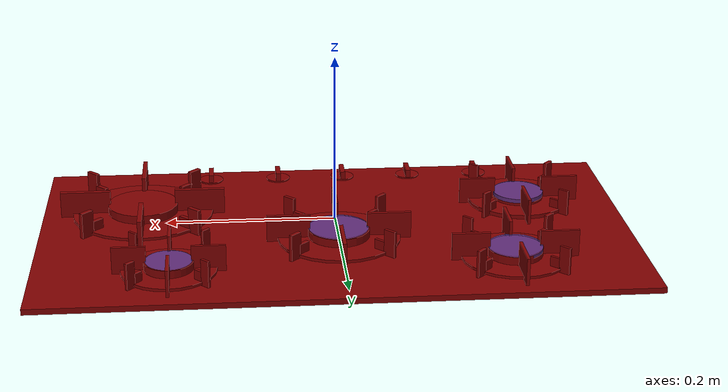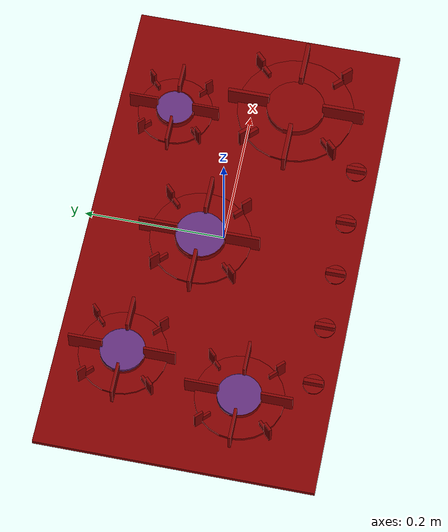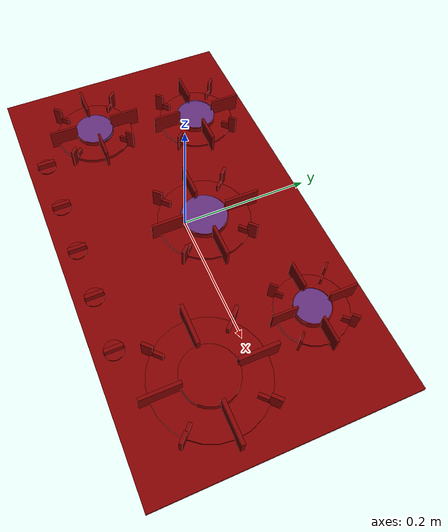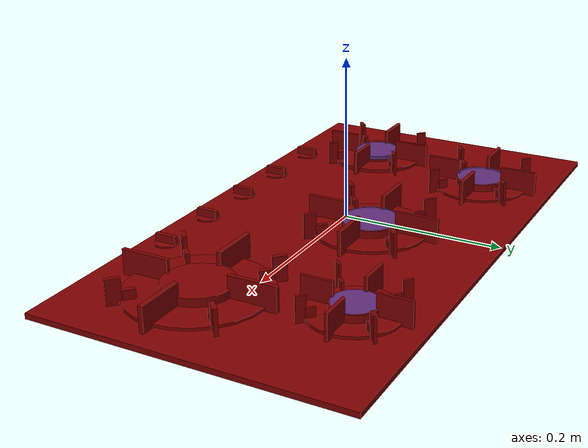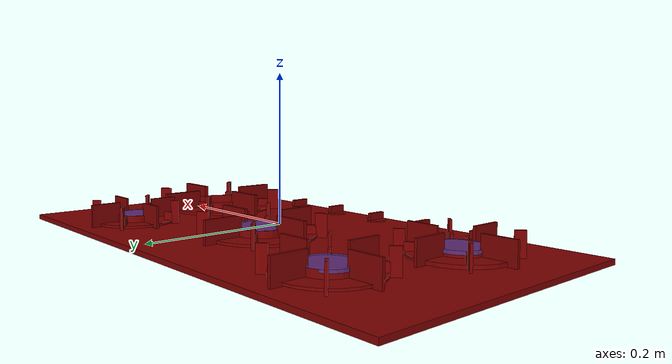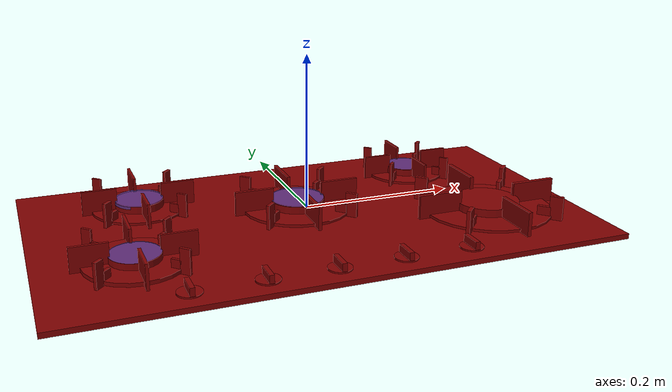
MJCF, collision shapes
<?xml version='1.0' encoding='UTF-8'?>
<mujoco model="model">
  <compiler angle="radian"/>
  <asset>
    <mesh file="visuals/knob_center.obj" name="knob_center_vis"/>
    <mesh file="visuals/knob_front_left.obj" name="knob_front_left_vis"/>
    <mesh file="visuals/knob_front_right.obj" name="knob_front_right_vis"/>
    <mesh file="visuals/knob_rear_left.obj" name="knob_rear_left_vis"/>
    <mesh file="visuals/knob_rear_right.obj" name="knob_rear_right_vis"/>
    <mesh file="visuals/Body001.obj" name="Body001_vis"/>
    <mesh file="visuals/Body002.obj" name="Body002_vis"/>
    <texture file="visuals/T_BC001.png" name="Body001_material" type="2d"/>
    <material name="Body001_material" rgba="1 1 1 1.0" texture="Body001_material" shininess="0.2512328028678894" specular="8"/>
    <texture file="visuals/T_BC001.png" name="knob_center_material" type="2d"/>
    <material name="knob_center_material" rgba="1 1 1 1.0" texture="knob_center_material" shininess="0.2512328028678894" specular="2"/>
    <texture file="visuals/T_BC001.png" name="knob_front_left_material" type="2d"/>
    <material name="knob_front_left_material" rgba="1 1 1 1.0" texture="knob_front_left_material" shininess="0.2512328028678894" specular="2"/>
    <texture file="visuals/T_BC001.png" name="knob_front_right_material" type="2d"/>
    <material name="knob_front_right_material" rgba="1 1 1 1.0" texture="knob_front_right_material" shininess="0.2512328028678894" specular="2"/>
    <texture file="visuals/T_BC001.png" name="knob_rear_left_material" type="2d"/>
    <material name="knob_rear_left_material" rgba="1 1 1 1.0" texture="knob_rear_left_material" shininess="0.2512328028678894" specular="2"/>
    <texture file="visuals/T_BC001.png" name="knob_rear_right_material" type="2d"/>
    <material name="knob_rear_right_material" rgba="1 1 1 1.0" texture="knob_rear_right_material" shininess="0.2512328028678894" specular="2"/>
    <texture file="visuals/T_BC001.png" name="Body002_material" type="2d"/>
    <material name="Body002_material" rgba="1 1 1 1.0" texture="Body002_material" shininess="0.2512328028678894" specular="3"/>
  </asset>
  <default>
    <default class="visual">
      <geom conaffinity="0" contype="0" group="1" type="mesh"/>
    </default>
    <default class="collision">
      <geom group="0" rgba="0.5 0 0 0.5"/>
    </default>
    <default class="spawn">
      <geom group="0" rgba="1 1 1 0.5" contype="0" conaffinity="0"/>
      <site group="0" rgba="1 1 1 0.5"/>
    </default>
    <default class="region">
      <geom group="1" conaffinity="0" contype="0" rgba="0 1 0 0"/>
    </default>
  </default>
  <worldbody>
    <body>
      <body name="object">
        <site type="cylinder" rgba="0.3 0.4 1 0.5" size="0.031039979308843613 0.0026827813126146793" pos="-0.23412662744522095 -0.06868687272071838 -0.000788892968557775" name="burner_on_front_left"/>
        <site type="cylinder" rgba="0.3 0.4 1 0.5" size="0.041901927441358566 0.0032345084473490715" pos="0.23053333163261414 -0.06037803366780281 -0.0012766928412020206" name="burner_on_front_right"/>
        <site type="cylinder" rgba="0.3 0.4 1 0.5" size="0.03170698881149292 0.0026528744492679834" pos="-0.19920353591442108 0.10191013664007187 0.000673864153213799" name="burner_on_rear_left"/>
        <site type="cylinder" rgba="0.3 0.4 1 0.5" size="0.02689894661307335 0.002362231258302927" pos="0.1954825073480606 0.11091150343418121 -3.217346966266632e-05" name="burner_on_rear_right"/>
        <site type="cylinder" rgba="0.3 0.4 1 0.5" size="0.03561927750706673 0.0027672413270920515" pos="-0.0018503711326047778 0.03284667059779167 0.0006277498323470354" name="burner_center"/>
        <geom mesh="Body001_vis" type="mesh" solimp="0.998 0.998 0.001" solref="0.001 1" density="100" friction="0.95 0.3 0.1" class="visual" material="Body001_material"/>
        <geom class="collision" type="box" pos="-1.9870640244334936e-08 -3.975583240389824e-08 -0.01567908190190792" size="0.35133975744247437 0.19492700695991516 0.0033905429299920797" quat="1.0 0.0 0.0 0.0"/>
        <body name="knob_center">
          <joint axis="0.0 0.0 1.0" pos="-0.021718578413128853 -0.1645481139421463 -0.005766221322119236" limited="true" name="knob_center_joint" range="0.0 3.6651914291880923" type="hinge" damping="0.05" armature="0.001"/>
          <geom mesh="knob_center_vis" type="mesh" solimp="0.998 0.998 0.001" solref="0.001 1" density="100" friction="0.95 0.3 0.1" class="visual" material="knob_center_material"/>
          <geom class="collision" type="cylinder" pos="-0.02172020636498928 -0.16453014314174652 -0.010111648589372635" size="0.014798812568187714 0.0009359997930005193" quat="1.0 0.0 0.0 0.0"/>
          <geom class="collision" type="box" pos="-0.02166769653558731 -0.1644439697265625 -0.004227417055517435" size="0.0029218827839940786 0.013743828050792217 0.005035351496189833" quat="1.0 0.0 0.0 0.0"/>
        </body>
        <body name="knob_front_left">
          <joint axis="0.0 0.0 1.0" pos="-0.1938755214214325 -0.16454796493053436 -0.005766180343925953" limited="true" name="knob_front_left_joint" range="0.0 3.6651914291880923" type="hinge" damping="0.05" armature="0.001"/>
          <geom mesh="knob_front_left_vis" type="mesh" solimp="0.998 0.998 0.001" solref="0.001 1" density="100" friction="0.95 0.3 0.1" class="visual" material="knob_front_left_material"/>
          <geom class="collision" type="cylinder" pos="-0.19387772679328918 -0.16453014314174652 -0.010111648589372635" size="0.014798812568187714 0.0009359997930005193" quat="1.0 0.0 0.0 0.0"/>
          <geom class="collision" type="box" pos="-0.19382520020008087 -0.1644439697265625 -0.004227417055517435" size="0.0029218827839940786 0.013743828050792217 0.005035351496189833" quat="1.0 0.0 0.0 0.0"/>
        </body>
        <body name="knob_front_right">
          <joint axis="0.0 0.0 1.0" pos="0.14702817797660828 -0.1645480841398239 -0.005765841342508793" limited="true" name="knob_front_right_joint" range="0.0 3.6651914291880923" type="hinge" damping="0.05" armature="0.001"/>
          <geom mesh="knob_front_right_vis" type="mesh" solimp="0.998 0.998 0.001" solref="0.001 1" density="100" friction="0.95 0.3 0.1" class="visual" material="knob_front_right_material"/>
          <geom class="collision" type="cylinder" pos="0.1470891535282135 -0.16453014314174652 -0.010111648589372635" size="0.014798812568187714 0.0009359997930005193" quat="1.0 0.0 0.0 0.0"/>
          <geom class="collision" type="box" pos="0.14714165031909943 -0.1644439697265625 -0.004227417055517435" size="0.0029218827839940786 0.013743828050792217 0.005035351496189833" quat="1.0 0.0 0.0 0.0"/>
        </body>
        <body name="knob_rear_left">
          <joint axis="0.0 0.0 1.0" pos="-0.1065337061882019 -0.16454778611660004 -0.005766345653682947" limited="true" name="knob_rear_left_joint" range="0.0 3.6651914291880923" type="hinge" damping="0.05" armature="0.001"/>
          <geom mesh="knob_rear_left_vis" type="mesh" solimp="0.998 0.998 0.001" solref="0.001 1" density="100" friction="0.95 0.3 0.1" class="visual" material="knob_rear_left_material"/>
          <geom class="collision" type="cylinder" pos="-0.10649147629737854 -0.16453014314174652 -0.010111648589372635" size="0.014798812568187714 0.0009359997930005193" quat="1.0 0.0 0.0 0.0"/>
          <geom class="collision" type="box" pos="-0.10643895715475082 -0.1644439697265625 -0.004227417055517435" size="0.0029218827839940786 0.013743828050792217 0.005035351496189833" quat="1.0 0.0 0.0 0.0"/>
        </body>
        <body name="knob_rear_right">
          <joint axis="0.0 0.0 1.0" pos="0.06127255782485008 -0.1645480990409851 -0.00576598197221756" limited="true" name="knob_rear_right_joint" range="0.0 3.6651914291880923" type="hinge" damping="0.05" armature="0.001"/>
          <geom mesh="knob_rear_right_vis" type="mesh" solimp="0.998 0.998 0.001" solref="0.001 1" density="100" friction="0.95 0.3 0.1" class="visual" material="knob_rear_right_material"/>
          <geom class="collision" type="cylinder" pos="0.061280038207769394 -0.16453014314174652 -0.010111648589372635" size="0.014798812568187714 0.0009359997930005193" quat="1.0 0.0 0.0 0.0"/>
          <geom class="collision" type="box" pos="0.061332546174526215 -0.1644439697265625 -0.004227417055517435" size="0.0029218827839940786 0.013743828050792217 0.005035351496189833" quat="1.0 0.0 0.0 0.0"/>
        </body>
        <body name="Body002">
          <geom mesh="Body002_vis" type="mesh" solimp="0.998 0.998 0.001" solref="0.001 1" density="100" friction="0.95 0.3 0.1" class="visual" material="Body002_material"/>
          <geom class="collision" type="cylinder" pos="0.2305164486169815 -0.06025883927941322 -0.009416977874934673" size="0.08525104075670242 0.00171655451413244" quat="1.0 0.0 0.0 0.0"/>
          <geom class="collision" type="cylinder" pos="0.19574254751205444 0.11078675836324692 -0.009487813338637352" size="0.05463491007685661 0.0017021840903908014" quat="1.0 0.0 0.0 0.0"/>
          <geom class="collision" type="cylinder" pos="-0.0021225272212177515 0.03306420147418976 -0.009609478525817394" size="0.07247783243656158 0.0017875622725114226" quat="1.0 0.0 0.0 0.0"/>
          <geom class="collision" type="cylinder" pos="-0.23411770164966583 -0.06894589215517044 -0.009139971807599068" size="0.062298860400915146 0.002385626547038555" quat="1.0 0.0 0.0 0.0"/>
          <geom class="collision" type="cylinder" pos="-0.1989661306142807 0.10190616548061371 -0.009529529139399529" size="0.06234082579612732 0.0015527750365436077" quat="1.0 0.0 0.0 0.0"/>
          <geom class="collision" type="box" pos="0.2304467111825943 -0.129726380109787 0.003392541315406561" size="0.002413199283182621 0.03010781668126583 0.015671569854021072" quat="1.0 0.0 0.0 0.0"/>
          <geom class="collision" type="box" pos="0.16819560527801514 -0.12323655188083649 0.003392541315406561" size="0.002460036426782608 0.00841588992625475 0.015671569854021072" quat="0.9234591722488403 0.0 0.0 -0.3836967349052429"/>
          <geom class="collision" type="box" pos="0.17888259887695312 -0.11259636282920837 -0.004079860635101795" size="0.002460036426782608 0.00841588992625475 0.008199169300496578" quat="0.9234591722488403 0.0 0.0 -0.3836967349052429"/>
          <geom class="collision" type="box" pos="0.16138878464698792 -0.060065172612667084 0.003392541315406561" size="0.03012009710073471 0.00271985842846334 0.015671569854021072" quat="1.0 0.0 0.0 0.0"/>
          <geom class="collision" type="box" pos="0.16725710034370422 0.0037271983455866575 0.003392541315406561" size="0.002592348027974367 0.00841588992625475 0.015671569854021072" quat="0.37939590215682983 0.0 0.0 -0.9252344369888306"/>
          <geom class="collision" type="box" pos="0.17784461379051208 -0.007011984940618277 -0.004079860635101795" size="0.002592348027974367 0.00841588992625475 0.008199169300496578" quat="0.37939590215682983 0.0 0.0 -0.9252344369888306"/>
          <geom class="collision" type="box" pos="0.2307799756526947 0.00919190514832735 0.003392541315406561" size="0.002619556849822402 0.030119605362415314 0.015671569854021072" quat="1.0 0.0 0.0 0.0"/>
          <geom class="collision" type="box" pos="0.2943020164966583 0.003259133081883192 0.003392541315406561" size="0.0025812520179897547 0.00841588992625475 0.015671569854021072" quat="0.3859662115573883 0.0 0.0 0.9225128889083862"/>
          <geom class="collision" type="box" pos="0.28363361954689026 -0.00740018067881465 -0.004079860635101795" size="0.0024804326239973307 0.00841588992625475 0.008199169300496578" quat="0.3859662115573883 0.0 0.0 0.9225128889083862"/>
          <geom class="collision" type="box" pos="0.29970353841781616 -0.0603160634636879 0.003392541315406561" size="0.03012058697640896 0.0028193634934723377 0.015671569854021072" quat="1.0 0.0 0.0 0.0"/>
          <geom class="collision" type="box" pos="0.29407891631126404 -0.12393683195114136 0.003392541315406561" size="0.0024447692558169365 0.008415890857577324 0.015671569854021072" quat="0.9252344965934753 0.0 0.0 0.3793957233428955"/>
          <geom class="collision" type="box" pos="0.28337109088897705 -0.11331626772880554 -0.004079860635101795" size="0.0026137246750295162 0.008415890857577324 0.008199169300496578" quat="0.9252344965934753 0.0 0.0 0.3793957233428955"/>
          <geom class="collision" type="box" pos="-0.0017104988219216466 -0.02650550752878189 0.0033930528443306684" size="0.0021257661283016205 0.02569197490811348 0.015852341428399086" quat="1.0 0.0 0.0 0.0"/>
          <geom class="collision" type="box" pos="-0.0566076785326004 -0.021989038214087486 0.0035659156274050474" size="0.002023607725277543 0.007693273946642876 0.016024960204958916" quat="0.9234591722488403 0.0 0.0 -0.3836967349052429"/>
          <geom class="collision" type="box" pos="-0.04683831334114075 -0.012262452393770218 -0.004259876906871796" size="0.002023607725277543 0.007693273946642876 0.008199169300496578" quat="0.9234591722488403 0.0 0.0 -0.3836967349052429"/>
          <geom class="collision" type="box" pos="-0.061109475791454315 0.03268968686461449 0.0035659156274050474" size="0.025963541120290756 0.0022304956801235676 0.01602519303560257" quat="1.0 0.0 0.0 0.0"/>
          <geom class="collision" type="box" pos="-0.05655159056186676 0.08762218058109283 0.0035659156274050474" size="0.00187376094982028 0.007693275343626738 0.016024960204958916" quat="0.37939590215682983 0.0 0.0 -0.9252344369888306"/>
          <geom class="collision" type="box" pos="-0.04687315225601196 0.07780509442090988 -0.004259876906871796" size="0.00187376094982028 0.007693275343626738 0.008199169300496578" quat="0.37939590215682983 0.0 0.0 -0.9252344369888306"/>
          <geom class="collision" type="box" pos="-0.0019446121295914054 0.09368745982646942 0.0034850158262997866" size="0.0021011100616306067 0.027532000094652176 0.015944281592965126" quat="1.0 0.0 0.0 0.0"/>
          <geom class="collision" type="box" pos="0.052505139261484146 0.08773154765367508 0.0035961701069027185" size="0.0021028558257967234 0.00769327487796545 0.016055215150117874" quat="0.3859662115573883 0.0 0.0 0.9225128889083862"/>
          <geom class="collision" type="box" pos="0.04276837781071663 0.07797163724899292 -0.004259876906871796" size="0.0022172550670802593 0.00769327487796545 0.008199169300496578" quat="0.3859662115573883 0.0 0.0 0.9225128889083862"/>
          <geom class="collision" type="box" pos="0.057457972317934036 0.03283430635929108 0.0035214973613619804" size="0.02549244463443756 0.0021603982895612717 0.015980752184987068" quat="1.0 0.0 0.0 0.0"/>
          <geom class="collision" type="box" pos="0.05311340093612671 -0.02201366052031517 0.003671024926006794" size="0.0021337748039513826 0.007693275343626738 0.016130071133375168" quat="0.9252344965934753 0.0 0.0 0.3793957233428955"/>
          <geom class="collision" type="box" pos="0.04324999079108238 -0.012378941290080547 -0.004259876906871796" size="0.0023935257922858 0.007693275343626738 0.008199169300496578" quat="0.9252344965934753 0.0 0.0 0.3793957233428955"/>
          <geom class="collision" type="box" pos="-0.23380047082901 -0.12058396637439728 0.0033260895870625973" size="0.0018819505348801613 0.022281741723418236 0.015785332769155502" quat="1.0 0.0 0.0 0.0"/>
          <geom class="collision" type="box" pos="-0.2812921404838562 -0.11682476848363876 0.003500396851450205" size="0.001977629028260708 0.006672104354947805 0.015959443524479866" quat="0.9234591722488403 0.0 0.0 -0.3836967349052429"/>
          <geom class="collision" type="box" pos="-0.27281951904296875 -0.1083892434835434 -0.004259876906871796" size="0.001977629028260708 0.006672104354947805 0.008199169300496578" quat="0.9234591722488403 0.0 0.0 -0.3836967349052429"/>
          <geom class="collision" type="box" pos="-0.2853533625602722 -0.06921780854463577 0.0033260895870625973" size="0.022517113015055656 0.0019061720231547952 0.015785321593284607" quat="1.0 0.0 0.0 0.0"/>
          <geom class="collision" type="box" pos="-0.28140056133270264 -0.021605050191283226 0.0033260895870625973" size="0.0016250464832410216 0.006672104820609093 0.015785135328769684" quat="0.37939590215682983 0.0 0.0 -0.9252344369888306"/>
          <geom class="collision" type="box" pos="-0.2730068266391754 -0.030119068920612335 -0.004259876906871796" size="0.0016250464832410216 0.006672104820609093 0.008199169300496578" quat="0.37939590215682983 0.0 0.0 -0.9252344369888306"/>
          <geom class="collision" type="box" pos="-0.2339620739221573 -0.016345247626304626 0.0033260895870625973" size="0.0017424094257876277 0.023877138271927834 0.015785308554768562" quat="1.0 0.0 0.0 0.0"/>
          <geom class="collision" type="box" pos="-0.18668004870414734 -0.021651700139045715 0.0033260895870625973" size="0.0016250464832410216 0.006672104820609093 0.015785135328769684" quat="0.3859662115573883 0.0 0.0 0.9225128889083862"/>
          <geom class="collision" type="box" pos="-0.1951940357685089 -0.030045462772250175 -0.004259876906871796" size="0.0016250464832410216 0.006672104820609093 0.008199169300496578" quat="0.3859662115573883 0.0 0.0 0.9225128889083862"/>
          <geom class="collision" type="box" pos="-0.18252341449260712 -0.06898942589759827 0.0033260895870625973" size="0.02210799977183342 0.0017424076795578003 0.015785297378897667" quat="1.0 0.0 0.0 0.0"/>
          <geom class="collision" type="box" pos="-0.18631841242313385 -0.11671436578035355 0.0033260895870625973" size="0.001813482609577477 0.006672104820609093 0.015785135328769684" quat="0.9252344965934753 0.0 0.0 0.3793957829475403"/>
          <geom class="collision" type="box" pos="-0.19471217691898346 -0.10820035636425018 -0.004259876906871796" size="0.001813482609577477 0.006672104820609093 0.008199169300496578" quat="0.9252344965934753 0.0 0.0 0.3793957829475403"/>
          <geom class="collision" type="box" pos="-0.19910724461078644 0.049973201006650925 0.003698511514812708" size="0.0018003513105213642 0.022281741723418236 0.016157707199454308" quat="1.0 0.0 0.0 0.0"/>
          <geom class="collision" type="box" pos="-0.24685537815093994 0.0542072094976902 0.003698511514812708" size="0.001942478003911674 0.006672104354947805 0.01615755632519722" quat="0.9234591722488403 0.0 0.0 -0.3836967349052429"/>
          <geom class="collision" type="box" pos="-0.2383827567100525 0.06264273077249527 -0.004259876906871796" size="0.001942478003911674 0.006672104354947805 0.008199169300496578" quat="0.9234591722488403 0.0 0.0 -0.3836967349052429"/>
          <geom class="collision" type="box" pos="-0.2504430115222931 0.10150311887264252 0.003698511514812708" size="0.02251625992357731 0.001742408494465053 0.016157696023583412" quat="1.0 0.0 0.0 0.0"/>
          <geom class="collision" type="box" pos="-0.24649107456207275 0.14895211160182953 0.003698511514812708" size="0.0016250464832410216 0.006672104820609093 0.01615755632519722" quat="0.37939590215682983 0.0 0.0 -0.9252344369888306"/>
          <geom class="collision" type="box" pos="-0.23809732496738434 0.14043809473514557 -0.004259876906871796" size="0.0016250464832410216 0.006672104820609093 0.008199169300496578" quat="0.37939590215682983 0.0 0.0 -0.9252344369888306"/>
          <geom class="collision" type="box" pos="-0.19916130602359772 0.15421244502067566 0.003698511514812708" size="0.0018511433154344559 0.023877672851085663 0.016157684847712517" quat="1.0 0.0 0.0 0.0"/>
          <geom class="collision" type="box" pos="-0.15190273523330688 0.14903952181339264 0.003698511514812708" size="0.0018133152043446898 0.006672104820609093 0.01615755632519722" quat="0.3859662115573883 0.0 0.0 0.9225128889083862"/>
          <geom class="collision" type="box" pos="-0.16041672229766846 0.14064575731754303 -0.004259876906871796" size="0.0018133152043446898 0.006672104820609093 0.008199169300496578" quat="0.3859662115573883 0.0 0.0 0.9225128889083862"/>
          <geom class="collision" type="box" pos="-0.14761213958263397 0.1019052267074585 0.003698511514812708" size="0.02210979163646698 0.0020798929035663605 0.01615767367184162" quat="1.0 0.0 0.0 0.0"/>
          <geom class="collision" type="box" pos="-0.15154309570789337 0.05371050536632538 0.0033757498022168875" size="0.0016250464832410216 0.006672104820609093 0.01583479531109333" quat="0.9252344965934753 0.0 0.0 0.3793957829475403"/>
          <geom class="collision" type="box" pos="-0.15993686020374298 0.06222451478242874 -0.004259876906871796" size="0.0016250464832410216 0.006672104820609093 0.008199169300496578" quat="0.9252344965934753 0.0 0.0 0.3793957829475403"/>
          <geom class="collision" type="box" pos="0.19556857645511627 0.06600487977266312 0.0035905770491808653" size="0.0015870715724304318 0.019392069429159164 0.016049621626734734" quat="1.0 0.0 0.0 0.0"/>
          <geom class="collision" type="box" pos="0.15415145456790924 0.06941237300634384 0.0039413138292729855" size="0.0015295316698029637 0.005806835368275642 0.016400359570980072" quat="0.9234591126441956 0.0 0.0 -0.38369685411453247"/>
          <geom class="collision" type="box" pos="0.16152530908584595 0.07675393670797348 -0.004259876906871796" size="0.0015295316698029637 0.005806835368275642 0.008199169300496578" quat="0.9234591126441956 0.0 0.0 -0.38369685411453247"/>
          <geom class="collision" type="box" pos="0.15082775056362152 0.1106591448187828 0.0032125250436365604" size="0.019657205790281296 0.0017094668000936508 0.015671569854021072" quat="1.0 0.0 0.0 0.0"/>
          <geom class="collision" type="box" pos="0.15431331098079681 0.15226705372333527 0.0033851093612611294" size="0.0015842283610254526 0.005806834902614355 0.015844155102968216" quat="0.37939590215682983 0.0 0.0 -0.9252344369888306"/>
          <geom class="collision" type="box" pos="0.16161853075027466 0.14485715329647064 -0.004259876906871796" size="0.0015842283610254526 0.005806834902614355 0.008199169300496578" quat="0.37939590215682983 0.0 0.0 -0.9252344369888306"/>
          <geom class="collision" type="box" pos="0.19574777781963348 0.15672411024570465 0.0034229527227580547" size="0.001785465283319354 0.02078196406364441 0.01588199846446514" quat="1.0 0.0 0.0 0.0"/>
          <geom class="collision" type="box" pos="0.2369399517774582 0.1517917662858963 0.0033968982752412558" size="0.0018571855034679174 0.00580683583393693 0.0158559437841177" quat="0.3859662115573883 0.0 0.0 0.9225128889083862"/>
          <geom class="collision" type="box" pos="0.22953009605407715 0.14448653161525726 -0.004259876906871796" size="0.0018571855034679174 0.00580683583393693 0.008199169300496578" quat="0.3859662115573883 0.0 0.0 0.9225128889083862"/>
          <geom class="collision" type="box" pos="0.24024547636508942 0.11069395393133163 0.0035695843398571014" size="0.019242070615291595 0.0017308916430920362 0.0160286296159029" quat="1.0 0.0 0.0 0.0"/>
          <geom class="collision" type="box" pos="0.23687125742435455 0.06930118054151535 0.0033770843874663115" size="0.0014764938969165087 0.005806834902614355 0.01583612896502018" quat="0.9252344965934753 0.0 0.0 0.3793957829475403"/>
          <geom class="collision" type="box" pos="0.2295660525560379 0.07671105116605759 -0.004259876906871796" size="0.0014764938969165087 0.005806834902614355 0.008199169300496578" quat="0.9252344965934753 0.0 0.0 0.3793957829475403"/>
          <geom class="collision" type="cylinder" pos="-0.1989661306142807 0.10190616548061371 -0.003242204897105694" size="0.03182000666856766 0.004943435546010733" quat="1.0 0.0 0.0 0.0"/>
          <geom class="collision" type="cylinder" pos="-0.23411770164966583 -0.06894589215517044 -0.003277851501479745" size="0.03106033429503441 0.0046480195596814156" quat="1.0 0.0 0.0 0.0"/>
          <geom class="collision" type="cylinder" pos="-0.0021225272212177515 0.03306420147418976 -0.0029984530992805958" size="0.03650513291358948 0.0048657869920134544" quat="1.0 0.0 0.0 0.0"/>
          <geom class="collision" type="cylinder" pos="0.19574254751205444 0.11078675836324692 -0.004914641380310059" size="0.028318380936980247 0.006425067782402039" quat="1.0 0.0 0.0 0.0"/>
          <geom class="collision" type="cylinder" pos="0.2305164486169815 -0.06025883927941322 -0.0038653938099741936" size="0.04232261702418327 0.00640376191586256" quat="1.0 0.0 0.0 0.0"/>
        </body>
        <geom class="region" name="reg_main" type="box" pos="7.450580596923828e-09 -7.450577044210149e-09 -0.015679089352488518" size="0.35133975744247437 0.194926917552948 0.0033905389718711376"/>
      </body>
    </body>
  </worldbody>
  <actuator>
    <motor name="knob_center_joint_actuator" joint="knob_center_joint" gear="10"/>
    <motor name="knob_front_left_joint_actuator" joint="knob_front_left_joint" gear="10"/>
    <motor name="knob_front_right_joint_actuator" joint="knob_front_right_joint" gear="10"/>
    <motor name="knob_rear_left_joint_actuator" joint="knob_rear_left_joint" gear="10"/>
    <motor name="knob_rear_right_joint_actuator" joint="knob_rear_right_joint" gear="10"/>
  </actuator>
</mujoco>
